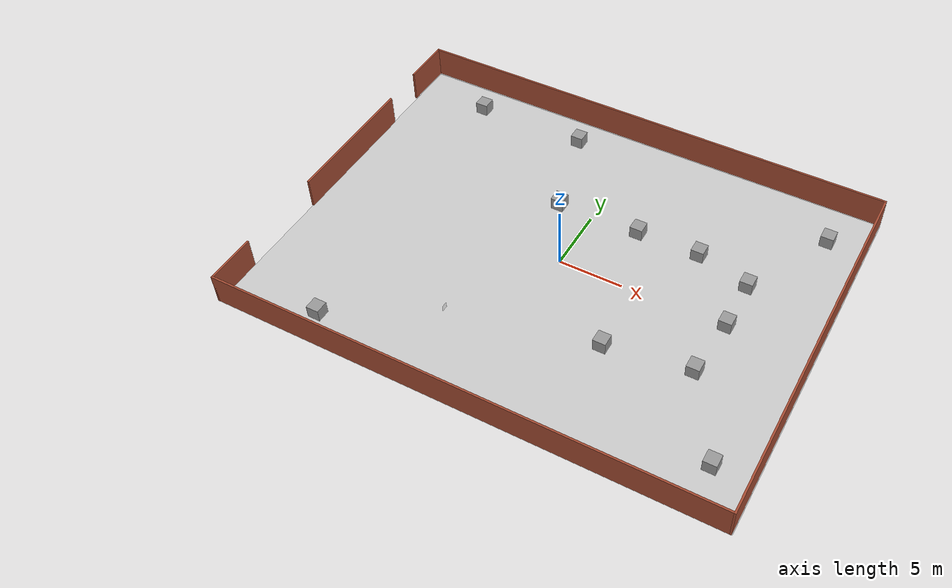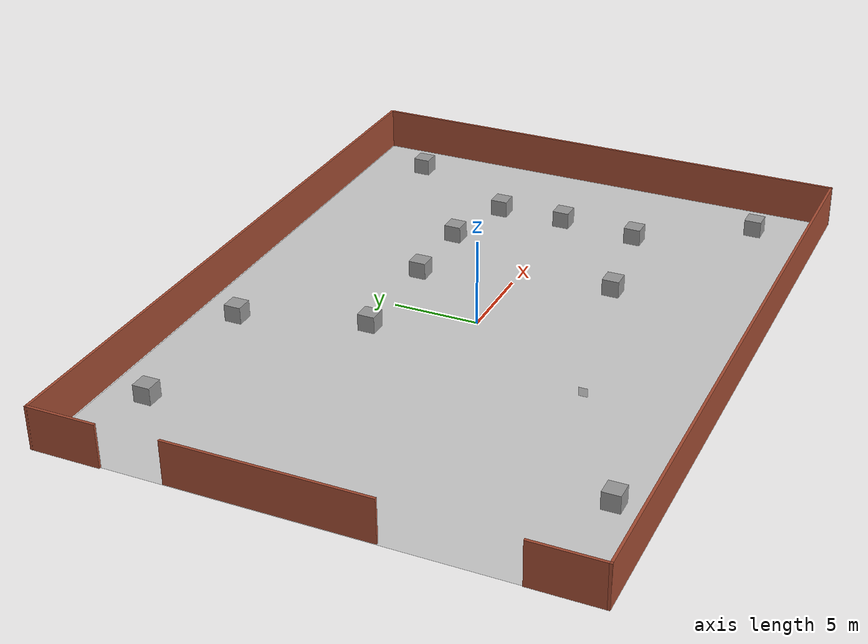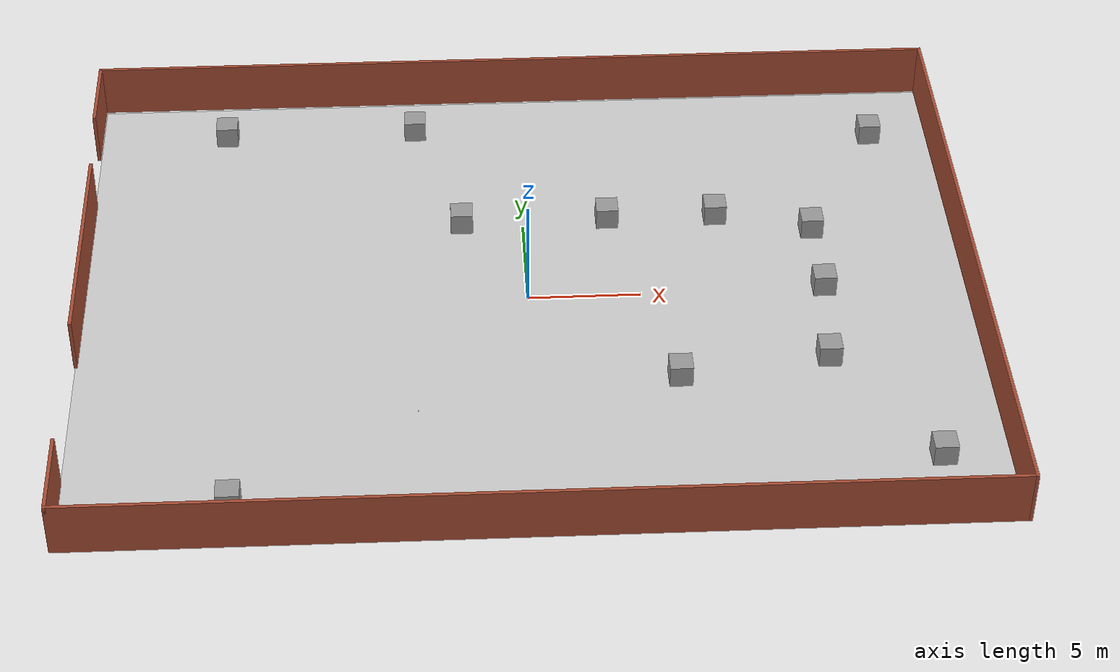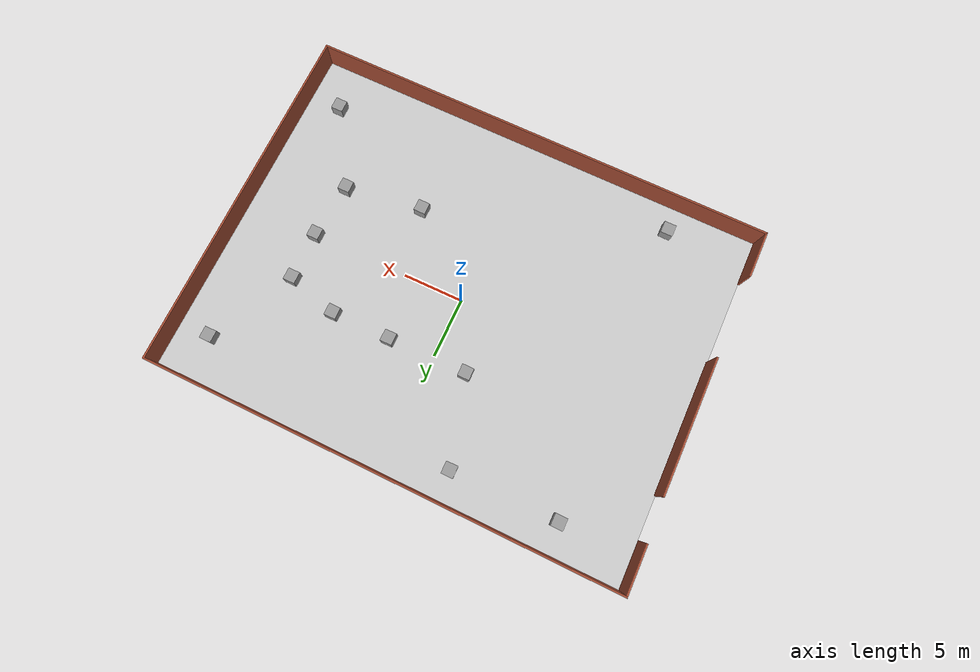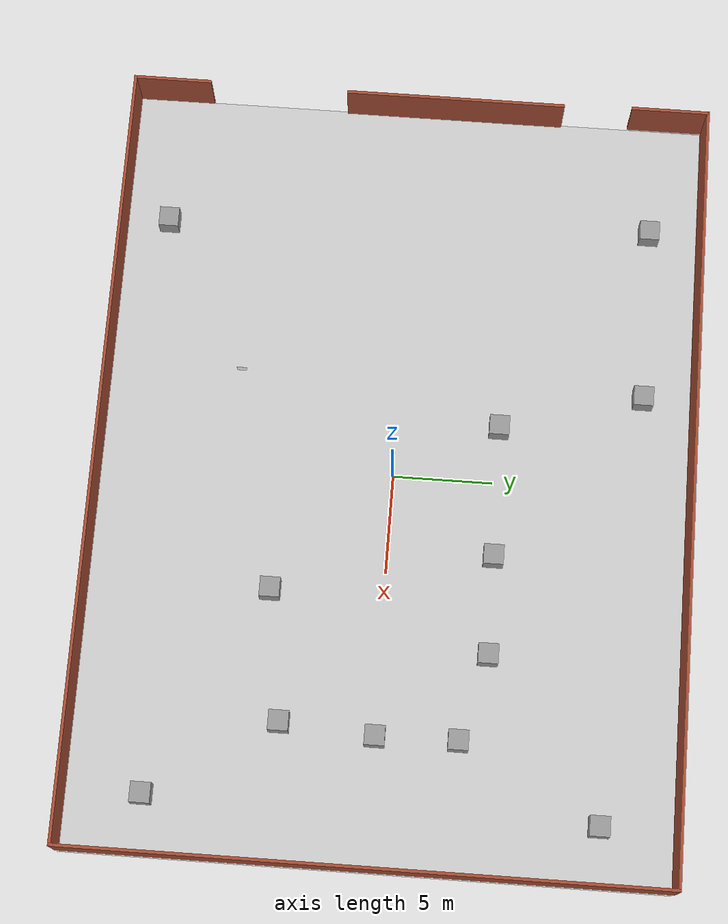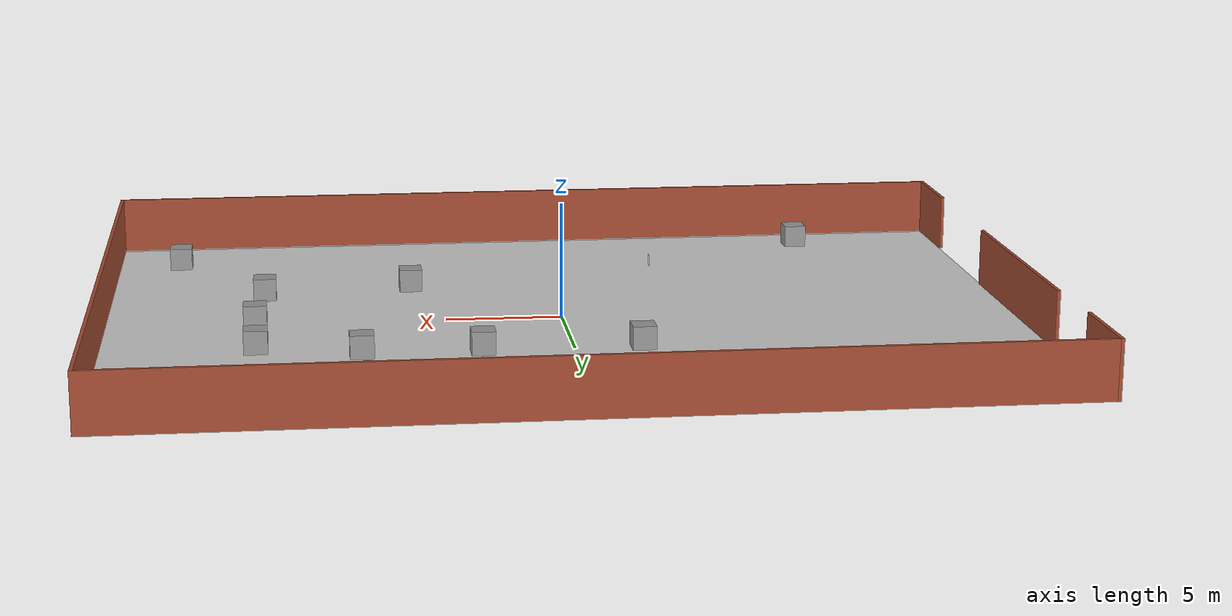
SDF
<sdf version="1.6">
 <world name="default">
  <light name="sun" type="directional">
   <pose>0 0 10 0 -0 0</pose>
   <diffuse>0.8 0.8 0.8 1</diffuse>
   <specular>0.1 0.1 0.1 1</specular>
   <attenuation>
    <range>1000</range>
    <constant>0.9</constant>
    <linear>0.01</linear>
    <quadratic>0.001</quadratic>
   </attenuation>
   <direction>-0.5 0.5 -1</direction>
  </light>
  <model name="cmu_ground_plane">
   <static>1</static>
   <link name="link">
    <collision name="collision">
     <geometry><plane><normal>0 0 1</normal><size>39.44 29.55</size></plane></geometry>
     <surface><friction><ode><mu>100</mu><mu2>50</mu2></ode></friction></surface>
    </collision>
    <visual name="visual">
     <cast_shadows>0</cast_shadows>
     <geometry><plane><normal>0 0 1</normal><size>39.44 29.55</size></plane></geometry>
     <material>
      <script>
       <uri>model://cmu_ground_plane/materials/scripts</uri>
       <uri>model://cmu_ground_plane/materials/textures</uri>
       <name>CMUGroundPlane/Image</name>
      </script>
     </material>
    </visual>
   </link>
  </model>
  <gravity>0 0 -9.8</gravity>
  <magnetic_field>6e-06 2.3e-05 -4.2e-05</magnetic_field>
  <atmosphere type="adiabatic"/>
  <physics name="default_physics" default="0" type="ode">
   <max_step_size>0.001</max_step_size>
   <real_time_factor>1</real_time_factor>
   <real_time_update_rate>1000</real_time_update_rate>
  </physics>
  <scene><ambient>0.4 0.4 0.4 1</ambient><background>0.7 0.7 0.7 1</background><shadows>1</shadows></scene>
  <spherical_coordinates>
   <surface_model>EARTH_WGS84</surface_model>
   <latitude_deg>0</latitude_deg>
   <longitude_deg>0</longitude_deg>
   <elevation>0</elevation>
   <heading_deg>0</heading_deg>
  </spherical_coordinates>
  <model name="garage">
   <pose>-0.1012 0.05082 0 0 -0 0</pose>
   <link name="Wall_10">
    <collision name="Wall_10_Collision">
     <geometry><box><size>11.25 0.15 2.5</size></box></geometry>
     <pose>0 0 1.25 0 -0 0</pose>
    </collision>
    <visual name="Wall_10_Visual">
     <pose>0 0 1.25 0 -0 0</pose>
     <geometry><box><size>11.25 0.15 2.5</size></box></geometry>
     <material>
      <script><uri>file://media/materials/scripts/gazebo.material</uri><name>Gazebo/Bricks</name></script>
      <ambient>1 1 1 1</ambient>
     </material>
    </visual>
    <pose>-19.5828 1.79493 0 0 0 -1.5708</pose>
   </link>
   <link name="Wall_2">
    <collision name="Wall_2_Collision">
     <geometry><box><size>4 0.15 2.5</size></box></geometry>
     <pose>0 0 1.25 0 -0 0</pose>
    </collision>
    <visual name="Wall_2_Visual">
     <pose>0 0 1.25 0 -0 0</pose>
     <geometry><box><size>4 0.15 2.5</size></box></geometry>
     <material>
      <script><uri>file://media/materials/scripts/gazebo.material</uri><name>Gazebo/Bricks</name></script>
      <ambient>1 1 1 1</ambient>
     </material>
    </visual>
    <pose>-19.6442 -12.8901 0 0 0 -1.5708</pose>
   </link>
   <link name="Wall_3">
    <collision name="Wall_3_Collision">
     <geometry><box><size>39.5 0.15 2.5</size></box></geometry>
     <pose>0 0 1.25 0 -0 0</pose>
    </collision>
    <visual name="Wall_3_Visual">
     <pose>0 0 1.25 0 -0 0</pose>
     <geometry><box><size>39.5 0.15 2.5</size></box></geometry>
     <material>
      <script><uri>file://media/materials/scripts/gazebo.material</uri><name>Gazebo/Bricks</name></script>
      <ambient>1 1 1 1</ambient>
     </material>
    </visual>
    <pose>0.030764 -14.8151 0 0 -0 0</pose>
   </link>
   <link name="Wall_4">
    <collision name="Wall_4_Collision">
     <geometry><box><size>29.75 0.15 2.5</size></box></geometry>
     <pose>0 0 1.25 0 -0 0</pose>
    </collision>
    <visual name="Wall_4_Visual">
     <pose>0 0 1.25 0 -0 0</pose>
     <geometry><box><size>29.75 0.15 2.5</size></box></geometry>
     <material>
      <script><uri>file://media/materials/scripts/gazebo.material</uri><name>Gazebo/Bricks</name></script>
      <ambient>1 1 1 1</ambient>
     </material>
    </visual>
    <pose>19.7058 -0.015118 0 0 -0 1.5708</pose>
   </link>
   <link name="Wall_5">
    <collision name="Wall_5_Collision">
     <geometry><box><size>39.5615 0.15 2.5</size></box></geometry>
     <pose>0 0 1.25 0 -0 0</pose>
    </collision>
    <visual name="Wall_5_Visual">
     <pose>0 0 1.25 0 -0 0</pose>
     <geometry><box><size>39.5615 0.15 2.5</size></box></geometry>
     <material>
      <script><uri>file://media/materials/scripts/gazebo.material</uri><name>Gazebo/Bricks</name></script>
      <ambient>1 1 1 1</ambient>
     </material>
    </visual>
    <pose>0 14.8 0 0 -0 3.14083</pose>
   </link>
   <link name="Wall_7">
    <collision name="Wall_7_Collision">
     <geometry><box><size>4 0.15 2.5</size></box></geometry>
     <pose>0 0 1.25 0 -0 0</pose>
    </collision>
    <visual name="Wall_7_Visual">
     <pose>0 0 1.25 0 -0 0</pose>
     <geometry><box><size>4 0.15 2.5</size></box></geometry>
     <material>
      <script><uri>file://media/materials/scripts/gazebo.material</uri><name>Gazebo/Bricks</name></script>
      <ambient>1 1 1 1</ambient>
     </material>
    </visual>
    <pose>-19.7058 12.8901 0 0 0 -1.5708</pose>
   </link>
   <static>1</static>
  </model>
  <model name="unit_box_0">
   <pose>-12.765 -12.4906 0.499995 0 1e-05 0</pose>
   <link name="link">
    <inertial>
     <mass>1</mass>
     <inertia>
      <ixx>0.166667</ixx>
      <ixy>0</ixy>
      <ixz>0</ixz>
      <iyy>0.166667</iyy>
      <iyz>0</iyz>
      <izz>0.166667</izz>
     </inertia>
    </inertial>
    <collision name="collision"><geometry><box><size>1 1 1</size></box></geometry></collision>
    <visual name="visual">
     <geometry><box><size>1 1 1</size></box></geometry>
     <material>
      <script><name>Gazebo/Grey</name><uri>file://media/materials/scripts/gazebo.material</uri></script>
     </material>
    </visual>
   </link>
  </model>
  <model name="unit_box_3">
   <pose>6.25964 -5.63107 0.499995 0 1e-05 0</pose>
   <link name="link">
    <inertial>
     <mass>1</mass>
     <inertia>
      <ixx>0.166667</ixx>
      <ixy>0</ixy>
      <ixz>0</ixz>
      <iyy>0.166667</iyy>
      <iyz>0</iyz>
      <izz>0.166667</izz>
     </inertia>
    </inertial>
    <collision name="collision"><geometry><box><size>1 1 1</size></box></geometry></collision>
    <visual name="visual">
     <geometry><box><size>1 1 1</size></box></geometry>
     <material>
      <script><name>Gazebo/Grey</name><uri>file://media/materials/scripts/gazebo.material</uri></script>
     </material>
    </visual>
   </link>
  </model>
  <model name="unit_box_4">
   <pose>12.7897 -4.64731 0.499995 -1e-05 -0 -5e-06</pose>
   <link name="link">
    <inertial>
     <mass>1</mass>
     <inertia>
      <ixx>0.166667</ixx>
      <ixy>0</ixy>
      <ixz>0</ixz>
      <iyy>0.166667</iyy>
      <iyz>0</iyz>
      <izz>0.166667</izz>
     </inertia>
    </inertial>
    <collision name="collision"><geometry><box><size>1 1 1</size></box></geometry></collision>
    <visual name="visual">
     <geometry><box><size>1 1 1</size></box></geometry>
     <material>
      <script><name>Gazebo/Grey</name><uri>file://media/materials/scripts/gazebo.material</uri></script>
     </material>
    </visual>
   </link>
  </model>
  <model name="unit_box_5">
   <pose>16.7087 -10.9617 0.499995 0 1e-05 0</pose>
   <link name="link">
    <inertial>
     <mass>1</mass>
     <inertia>
      <ixx>0.166667</ixx>
      <ixy>0</ixy>
      <ixz>0</ixz>
      <iyy>0.166667</iyy>
      <iyz>0</iyz>
      <izz>0.166667</izz>
     </inertia>
    </inertial>
    <collision name="collision"><geometry><box><size>1 1 1</size></box></geometry></collision>
    <visual name="visual">
     <geometry><box><size>1 1 1</size></box></geometry>
     <material>
      <script><name>Gazebo/Grey</name><uri>file://media/materials/scripts/gazebo.material</uri></script>
     </material>
    </visual>
   </link>
  </model>
  <model name="unit_box_6">
   <pose>13.1699 0.058118 0.499995 0 1e-05 0</pose>
   <link name="link">
    <inertial>
     <mass>1</mass>
     <inertia>
      <ixx>0.166667</ixx>
      <ixy>0</ixy>
      <ixz>0</ixz>
      <iyy>0.166667</iyy>
      <iyz>0</iyz>
      <izz>0.166667</izz>
     </inertia>
    </inertial>
    <collision name="collision"><geometry><box><size>1 1 1</size></box></geometry></collision>
    <visual name="visual">
     <geometry><box><size>1 1 1</size></box></geometry>
     <material>
      <script><name>Gazebo/Grey</name><uri>file://media/materials/scripts/gazebo.material</uri></script>
     </material>
    </visual>
   </link>
  </model>
  <model name="unit_box_7">
   <pose>13.1081 4.11625 0.499995 -1e-05 -0 -5e-06</pose>
   <link name="link">
    <inertial>
     <mass>1</mass>
     <inertia>
      <ixx>0.166667</ixx>
      <ixy>0</ixy>
      <ixz>0</ixz>
      <iyy>0.166667</iyy>
      <iyz>0</iyz>
      <izz>0.166667</izz>
     </inertia>
    </inertial>
    <collision name="collision"><geometry><box><size>1 1 1</size></box></geometry></collision>
    <visual name="visual">
     <geometry><box><size>1 1 1</size></box></geometry>
     <material>
      <script><name>Gazebo/Grey</name><uri>file://media/materials/scripts/gazebo.material</uri></script>
     </material>
    </visual>
   </link>
  </model>
  <model name="unit_box_8">
   <pose>16.7424 11.1193 0.499995 -1e-05 -0 -5e-06</pose>
   <link name="link">
    <inertial>
     <mass>1</mass>
     <inertia>
      <ixx>0.166667</ixx>
      <ixy>0</ixy>
      <ixz>0</ixz>
      <iyy>0.166667</iyy>
      <iyz>0</iyz>
      <izz>0.166667</izz>
     </inertia>
    </inertial>
    <collision name="collision"><geometry><box><size>1 1 1</size></box></geometry></collision>
    <visual name="visual">
     <geometry><box><size>1 1 1</size></box></geometry>
     <material>
      <script><name>Gazebo/Grey</name><uri>file://media/materials/scripts/gazebo.material</uri></script>
     </material>
    </visual>
   </link>
  </model>
  <model name="unit_box_9">
   <pose>8.79594 5.30534 0.499995 -1e-05 -0 -5e-06</pose>
   <link name="link">
    <inertial>
     <mass>1</mass>
     <inertia>
      <ixx>0.166667</ixx>
      <ixy>0</ixy>
      <ixz>0</ixz>
      <iyy>0.166667</iyy>
      <iyz>0</iyz>
      <izz>0.166667</izz>
     </inertia>
    </inertial>
    <collision name="collision"><geometry><box><size>1 1 1</size></box></geometry></collision>
    <visual name="visual">
     <geometry><box><size>1 1 1</size></box></geometry>
     <material>
      <script><name>Gazebo/Grey</name><uri>file://media/materials/scripts/gazebo.material</uri></script>
     </material>
    </visual>
   </link>
  </model>
  <model name="unit_box_10">
   <pose>3.83656 5.27067 0.499995 0 1e-05 0</pose>
   <link name="link">
    <inertial>
     <mass>1</mass>
     <inertia>
      <ixx>0.166667</ixx>
      <ixy>0</ixy>
      <ixz>0</ixz>
      <iyy>0.166667</iyy>
      <iyz>0</iyz>
      <izz>0.166667</izz>
     </inertia>
    </inertial>
    <collision name="collision"><geometry><box><size>1 1 1</size></box></geometry></collision>
    <visual name="visual">
     <geometry><box><size>1 1 1</size></box></geometry>
     <material>
      <script><name>Gazebo/Grey</name><uri>file://media/materials/scripts/gazebo.material</uri></script>
     </material>
    </visual>
   </link>
  </model>
  <model name="unit_box_11">
   <pose>-2.81948 5.17117 0.499995 -1e-05 -0 -5e-06</pose>
   <link name="link">
    <inertial>
     <mass>1</mass>
     <inertia>
      <ixx>0.166667</ixx>
      <ixy>0</ixy>
      <ixz>0</ixz>
      <iyy>0.166667</iyy>
      <iyz>0</iyz>
      <izz>0.166667</izz>
     </inertia>
    </inertial>
    <collision name="collision"><geometry><box><size>1 1 1</size></box></geometry></collision>
    <visual name="visual">
     <geometry><box><size>1 1 1</size></box></geometry>
     <material>
      <script><name>Gazebo/Grey</name><uri>file://media/materials/scripts/gazebo.material</uri></script>
     </material>
    </visual>
   </link>
  </model>
  <model name="unit_box_12">
   <pose>-4.8536 12.3337 0.499995 0 1e-05 0</pose>
   <link name="link">
    <inertial>
     <mass>1</mass>
     <inertia>
      <ixx>0.166667</ixx>
      <ixy>0</ixy>
      <ixz>0</ixz>
      <iyy>0.166667</iyy>
      <iyz>0</iyz>
      <izz>0.166667</izz>
     </inertia>
    </inertial>
    <collision name="collision"><geometry><box><size>1 1 1</size></box></geometry></collision>
    <visual name="visual">
     <geometry><box><size>1 1 1</size></box></geometry>
     <material>
      <script><name>Gazebo/Grey</name><uri>file://media/materials/scripts/gazebo.material</uri></script>
     </material>
    </visual>
   </link>
  </model>
  <model name="unit_box_13">
   <pose>-13.7696 12.274 0.499995 0 1e-05 0</pose>
   <link name="link">
    <inertial>
     <mass>1</mass>
     <inertia>
      <ixx>0.166667</ixx>
      <ixy>0</ixy>
      <ixz>0</ixz>
      <iyy>0.166667</iyy>
      <iyz>0</iyz>
      <izz>0.166667</izz>
     </inertia>
    </inertial>
    <collision name="collision"><geometry><box><size>1 1 1</size></box></geometry></collision>
    <visual name="visual">
     <geometry><box><size>1 1 1</size></box></geometry>
     <material>
      <script><name>Gazebo/Grey</name><uri>file://media/materials/scripts/gazebo.material</uri></script>
     </material>
    </visual>
   </link>
  </model>
  <model name="aruco_visual_marker_7">
   <link name="marker">
    <pose>0 0 0.5 3.14159 1.57079 3.14159</pose>
    <visual name="visual">
     <geometry><box><size>0.5 0.5 1e-05</size></box></geometry>
     <material>
      <script>
       <uri>model://aruco_visual_marker_7/materials/scripts</uri>
       <uri>model://aruco_visual_marker_7/materials/textures</uri>
       <name>ArucoVisualMarker7/Marker</name>
      </script>
      <ambient>1 1 1 1</ambient>
      <diffuse>1 1 1 1</diffuse>
      <specular>0 0 0 1</specular>
      <emissive>1 1 1 0</emissive>
      <shader type="vertex"><normal_map>__default__</normal_map></shader>
     </material>
    </visual>
    <collision name="collision"><geometry><box><size>0.5 0.5 1e-05</size></box></geometry></collision>
   </link>
   <link name="marker_pad">
    <pose frame="marker">0 0 -1e-05 0 -0 0</pose>
    <visual name="visual">
     <geometry><box><size>0.5 0.5 1e-05</size></box></geometry>
     <material>
      <lighting>1</lighting>
      <script><uri>file://media/materials/scripts/gazebo.material</uri><name>Gazebo/White</name></script>
      <ambient>0.3 0.3 0.3 1</ambient>
      <diffuse>0.7 0.7 0.7 1</diffuse>
      <specular>0.01 0.01 0.01 1</specular>
      <emissive>1 1 1 0</emissive>
      <shader type="vertex"><normal_map>__default__</normal_map></shader>
     </material>
    </visual>
    <collision name="collision"><geometry><box><size>0.5 0.5 1e-05</size></box></geometry></collision>
   </link>
   <joint name="marker_JOINT_marker_pad" type="revolute">
    <parent>marker</parent>
    <child>marker_pad</child>
    <axis>
     <xyz>0 0 1</xyz>
     <limit><upper>0</upper><lower>0</lower></limit>
     <use_parent_model_frame>0</use_parent_model_frame>
     <dynamics><spring_reference>0</spring_reference><spring_stiffness>0</spring_stiffness></dynamics>
    </axis>
   </joint>
   <static>1</static>
   <pose>-4.97433 -8.03795 0 0 -0 0</pose>
  </model>
 </world>
</sdf>
